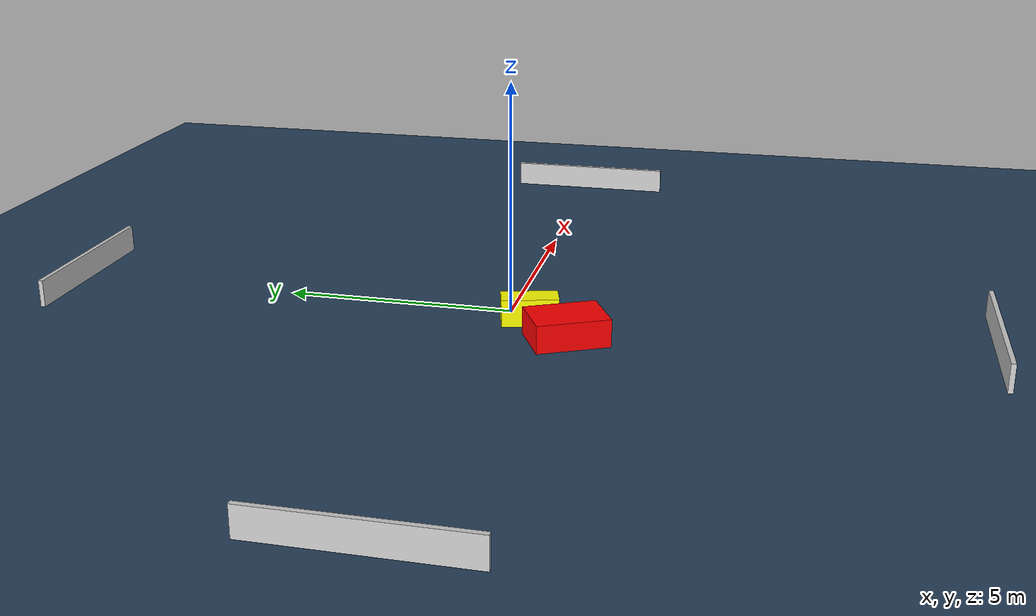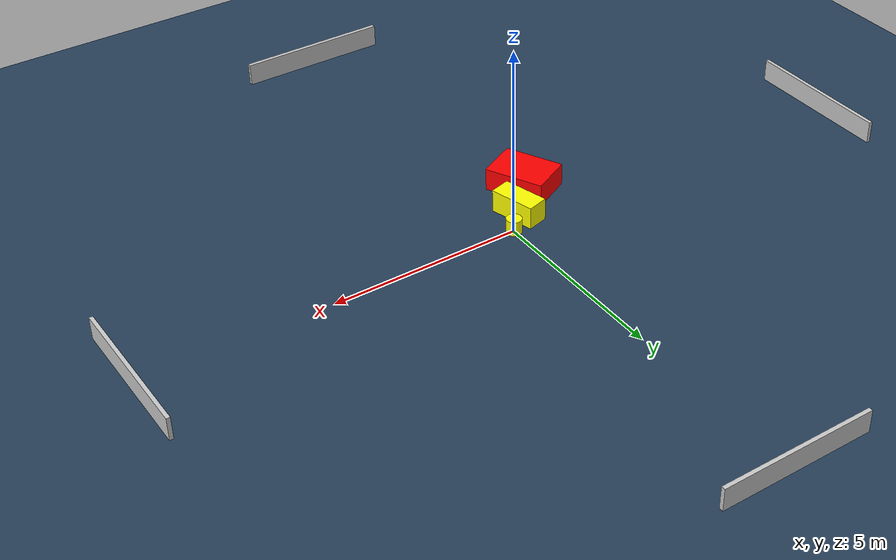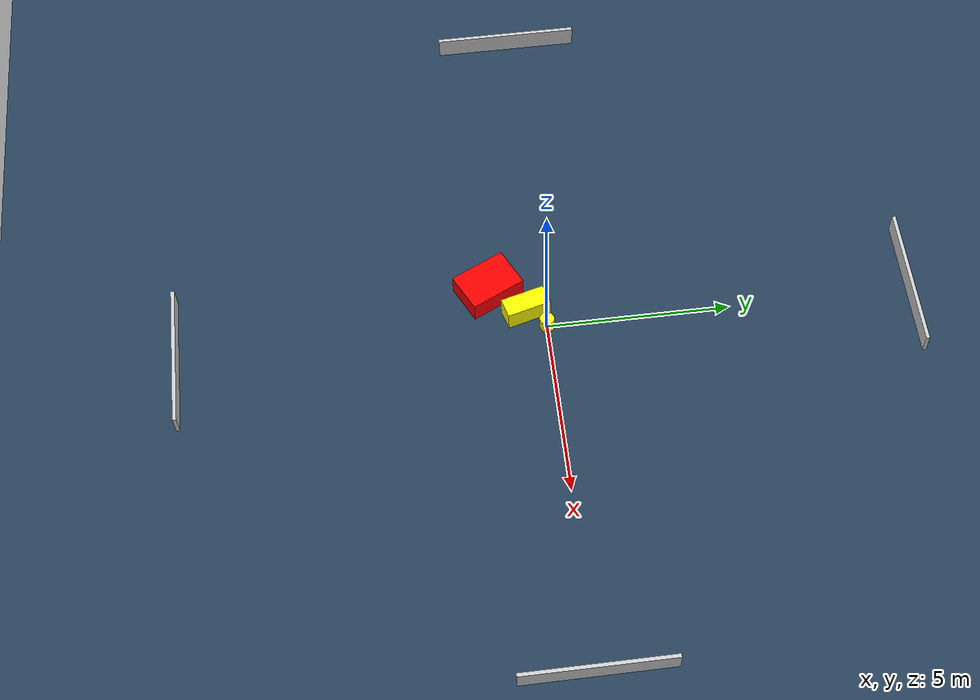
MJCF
<?xml version="1.0" ?>
<mujoco model="generated_environment">
  <option timestep="0.01" integrator="RK4" cone="elliptic"/>
  <default>
    <geom density="1"/>
  </default>
  <asset>
    <texture builtin="gradient" height="3072" name="skybox" rgb1="0.3 0.5 0.7" rgb2="0 0 0" type="skybox" width="512"/>
    <texture builtin="checker" height="300" name="groundplane" rgb1="0.2 0.3 0.4" rgb2="0.1 0.2 0.3" type="2d" width="300"/>
    <material name="groundplane" reflectance="0.2" texrepeat="5 5" texture="groundplane"/>
  </asset>
  <worldbody>
    <light dir="0 0 -1" directional="true" pos="0 0 1.5"/>
    <geom condim="3" friction="0.5 0.005 0.001" material="groundplane" name="floor" pos="0 0 0" size="0 0 0.05" type="plane"/>
    <body name="walls">
      <geom name="wall_1" condim="4" pos="-10.0 0.0 0.3" rgba="0.800000011920929 0.800000011920929 0.800000011920929 1.0" size="0.05 2.0 0.3" type="box"/>
      <geom name="wall_2" condim="4" pos="10.0 0.0 0.3" rgba="0.800000011920929 0.800000011920929 0.800000011920929 1.0" size="0.05 2.0 0.3" type="box"/>
      <geom name="wall_3" condim="4" pos="0.0 -10.0 0.3" rgba="0.800000011920929 0.800000011920929 0.800000011920929 1.0" size="2.0 0.05 0.3" type="box"/>
      <geom name="wall_4" condim="4" pos="0.0 10.0 0.3" rgba="0.800000011920929 0.800000011920929 0.800000011920929 1.0" size="2.0 0.05 0.3" type="box"/>
    </body>
    <body name="robot">
      <joint name="joint_x" type="slide" pos="0 0 0" axis="1 0 0"/>
      <joint name="joint_y" type="slide" pos="0 0 0" axis="0 1 0"/>
      <geom name="robot" type="cylinder" pos="0.0 0.0 0.2" size="0.2 0.2 0.0" mass="5.0" friction="1.0 0.005 0.0001" condim="4" rgba="1.0 1.0 0.0 1.0"/>
    </body>
    <body name="obstacle_1_movable">
      <geom name="obstacle_1_movable" condim="4" pos="-0.5041372572315382 -0.5215326706830117 0.3" euler="0 0 15.351040803427246" friction="0.0 0.005 0.001" rgba="1.0 1.0 0.0 1.0" size="0.2797837505505711 0.6097615218582733 0.3" type="box" mass="0.1"/>
      <joint type="free"/>
    </body>
    <body name="obstacle_2_static">
      <geom name="obstacle_2_static" condim="4" pos="-1.3220906792585787 -1.4650974977975078 0.3" euler="0 0 296.6188403625548" friction="0.0 0.005 0.001" rgba="1.0 0.0 0.0 1.0" size="0.78499042613066 0.5615246413972411 0.3" type="box"/>
    </body>
  </worldbody>
  <actuator>
    <motor name="actuator_x" joint="joint_x" gear="1" ctrlrange="-1 1"/>
    <motor name="actuator_y" joint="joint_y" gear="1" ctrlrange="-1 1"/>
  </actuator>
</mujoco>
